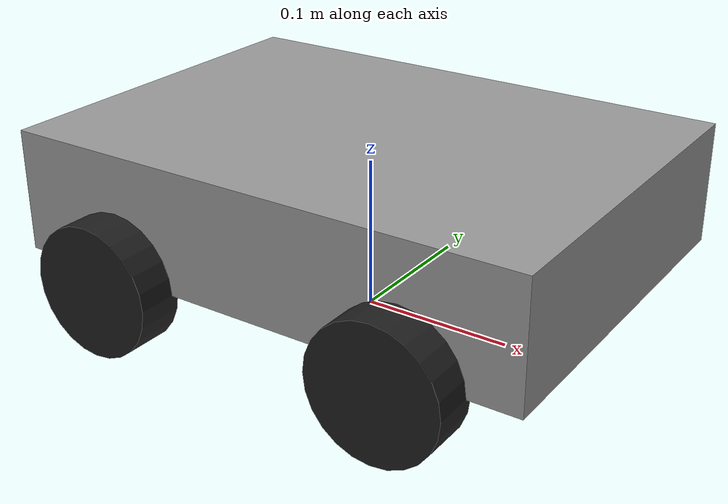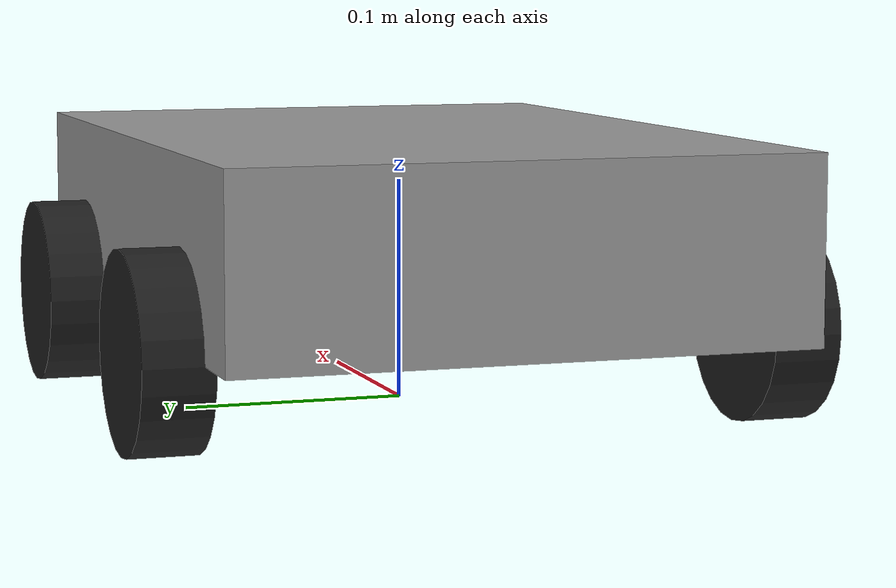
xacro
<?xml version="1.0"?>
<robot xmlns:xacro="http://www.ros.org/wiki/xacro">

  <!-- Dimensions & Masses -->
  <xacro:property name="chassis_length" value="0.35"/>
  <xacro:property name="chassis_width" value="0.25"/>
  <xacro:property name="chassis_height" value="0.08"/>
  <xacro:property name="chassis_mass" value="2.5"/>

  <!-- Wheel specifications -->
  <xacro:property name="wheel_radius" value="0.0425"/>
  <xacro:property name="wheel_width" value="0.030"/>
  <xacro:property name="wheel_separation" value="0.27"/> <!-- Track width (y-axis separation) -->
  <xacro:property name="wheelbase" value="0.20"/>        <!-- Longitudinal axle separation (x-axis) -->
  <xacro:property name="wheel_mass" value="0.20"/>

  <!-- base_footprint is on the ground plane directly below base_link -->
  <link name="base_footprint"/>

  <joint name="base_footprint_joint" type="fixed">
    <parent link="base_footprint"/>
    <child link="base_link"/>
    <origin xyz="0 0 ${wheel_radius}" rpy="0 0 0"/>
  </joint>

  <!-- base_link (origin at wheel axle height) -->
  <link name="base_link">
    <visual>
      <origin xyz="0 0 ${chassis_height / 2.0}" rpy="0 0 0"/>
      <geometry>
        <box size="${chassis_length} ${chassis_width} ${chassis_height}"/>
      </geometry>
      <material name="chassis_grey"/>
    </visual>
    <collision>
      <origin xyz="0 0 ${chassis_height / 2.0}" rpy="0 0 0"/>
      <geometry>
        <box size="${chassis_length} ${chassis_width} ${chassis_height}"/>
      </geometry>
    </collision>
    <xacro:box_inertia m="${chassis_mass}" x="${chassis_length}" y="${chassis_width}" z="${chassis_height}"/>
  </link>

  <!-- ==================== Wheel Macro ==================== -->
  <xacro:macro name="wheel" params="prefix side_sign x_pos rpy_rot axis_z">
    <joint name="${prefix}_wheel_joint" type="continuous">
      <parent link="base_link"/>
      <child link="${prefix}_wheel_link"/>
      <origin xyz="${x_pos} ${side_sign * wheel_separation / 2.0} 0" rpy="${rpy_rot} 0 0"/>
      <axis xyz="0 0 ${axis_z}"/>
    </joint>

    <link name="${prefix}_wheel_link">
      <visual>
        <geometry>
          <cylinder radius="${wheel_radius}" length="${wheel_width}"/>
        </geometry>
        <material name="wheel_black"/>
      </visual>
      <collision>
        <geometry>
          <cylinder radius="${wheel_radius}" length="${wheel_width}"/>
        </geometry>
      </collision>
      <xacro:cylinder_inertia m="${wheel_mass}" r="${wheel_radius}" h="${wheel_width}"/>
    </link>
  </xacro:macro>

  <!-- 4-Wheel Skid-Steer Layout -->
  <!-- Left side (side_sign = 1, rpy = -pi/2, axis = 1) -->
  <xacro:wheel prefix="front_left" side_sign="1"  x_pos="${wheelbase / 2.0}"  rpy_rot="-${pi/2}" axis_z="1"/>
  <xacro:wheel prefix="rear_left"  side_sign="1"  x_pos="-${wheelbase / 2.0}" rpy_rot="-${pi/2}" axis_z="1"/>

  <!-- Right side (side_sign = -1, rpy = pi/2, axis = -1) -->
  <xacro:wheel prefix="front_right" side_sign="-1" x_pos="${wheelbase / 2.0}"  rpy_rot="${pi/2}"  axis_z="-1"/>
  <xacro:wheel prefix="rear_right"  side_sign="-1" x_pos="-${wheelbase / 2.0}" rpy_rot="${pi/2}"  axis_z="-1"/>

</robot>
